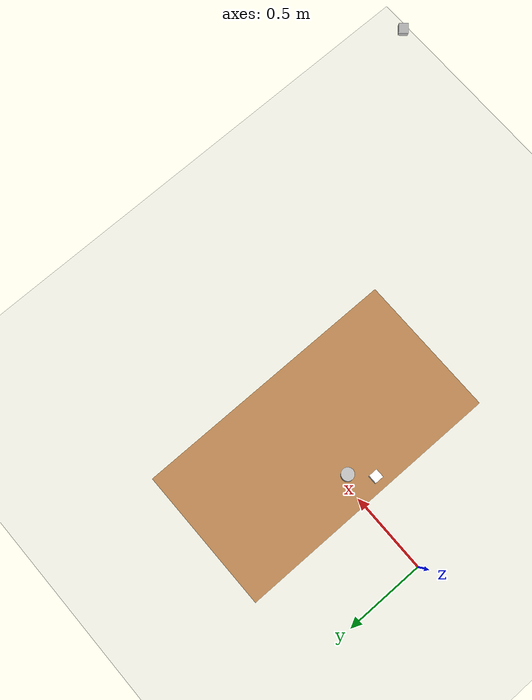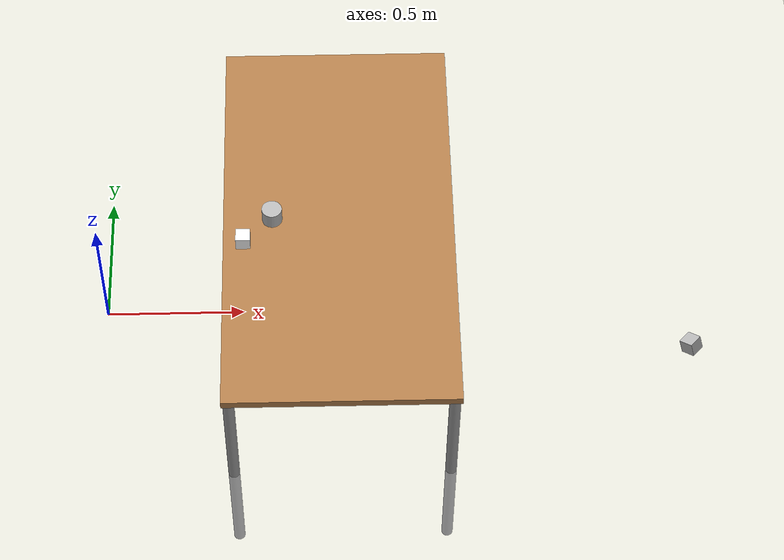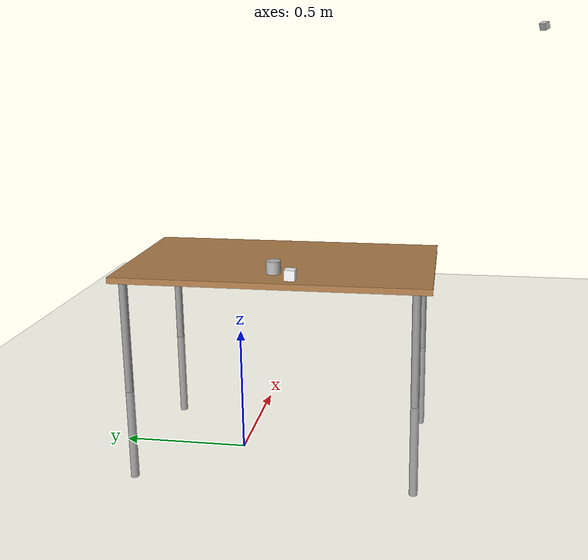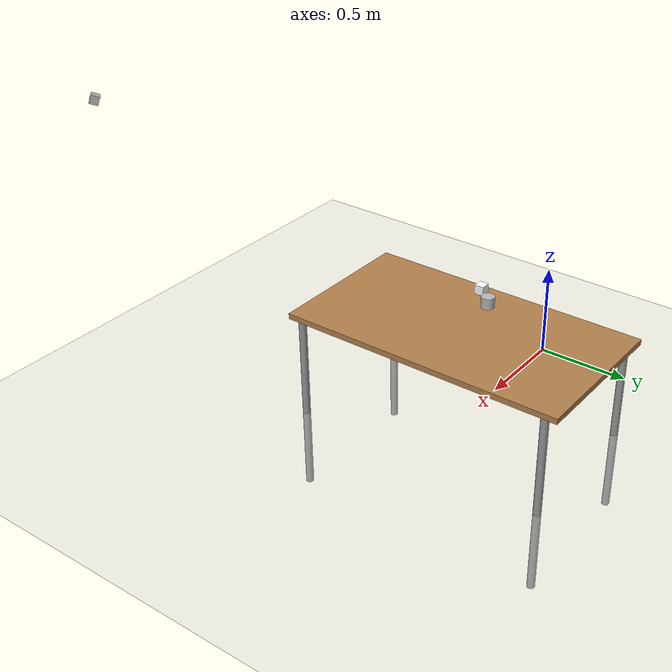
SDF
<sdf version="1.6">
 <world name="grab_world">
  <include><uri>model://ground_plane</uri></include>
  <include><uri>model://sun</uri></include>
  <include><name>table</name><uri>model://table</uri><pose>0.85 0 -0.45 0 0 1.5708</pose></include>
  <include><name>wood_cube</name><uri>model://wood_cube_5cm</uri><pose>0.52 -0.10 0.565 0 0 0</pose></include>
  <include><name>beer</name><uri>model://beer</uri><pose>0.62 0.0 0.565 0 0 0</pose></include>
  <model name="scene_camera">
   <static>true</static>
   <pose>1.8 -1.3 1.7 0 0.35 2.4</pose>
   <link name="link">
    <visual name="vis"><geometry><box><size>0.04 0.04 0.04</size></box></geometry></visual>
    <sensor type="camera" name="scene_cam">
     <always_on>true</always_on>
     <update_rate>15</update_rate>
     <camera name="scene">
      <horizontal_fov>1.2</horizontal_fov>
      <image><width>960</width><height>540</height><format>R8G8B8</format></image>
      <clip><near>0.05</near><far>50</far></clip>
     </camera>
     <plugin name="scene_cam_controller" filename="libgazebo_ros_camera.so">
      <ros>
       <namespace>/sim_scene/arm</namespace>
       <remapping>scene/image_raw:=image_raw</remapping>
       <remapping>scene/camera_info:=camera_info</remapping>
      </ros>
      <camera_name>scene</camera_name>
      <frame_name>scene_camera</frame_name>
     </plugin>
    </sensor>
   </link>
  </model>
  <physics name="default_physics" default="0" type="ode">
   <max_step_size>0.001</max_step_size>
   <real_time_factor>1.0</real_time_factor>
   <real_time_update_rate>1000</real_time_update_rate>
  </physics>
 </world>
</sdf>

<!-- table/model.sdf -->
<sdf version="1.5">
  <model name="table">
    <static>true</static>
    <link name="link">
      <collision name="surface">
        <pose>0 0 1.0 0 0 0</pose>
        <geometry>
          <box>
            <size>1.5 0.8 0.03</size>
          </box>
        </geometry>
        <surface>
          <friction>
            <ode>
              <mu>0.6</mu>
              <mu2>0.6</mu2>
            </ode>
          </friction>
        </surface>
      </collision>
      <visual name="visual1">
        <pose>0 0 1.0 0 0 0</pose>
        <geometry>
          <box>
            <size>1.5 0.8 0.03</size>
          </box>
        </geometry>
        <material>
          <script>
            <uri>model://media/materials/scripts/gazebo.material</uri>
            <name>Gazebo/Wood</name>
          </script>
        </material>
      </visual>
      <collision name="front_left_leg">
        <pose>0.68 0.38 0.5 0 0 0</pose>
        <geometry>
          <cylinder>
            <radius>0.02</radius>
            <length>1.0</length>
          </cylinder>
        </geometry>
      </collision>
      <visual name="front_left_leg">
        <pose>0.68 0.38 0.5 0 0 0</pose>
        <geometry>
          <cylinder>
            <radius>0.02</radius>
            <length>1.0</length>
          </cylinder>
        </geometry>
        <material>
          <script>
            <uri>model://media/materials/scripts/gazebo.material</uri>
            <name>Gazebo/Grey</name>
          </script>
        </material>
      </visual>
      <collision name="front_right_leg">
        <pose>0.68 -0.38 0.5 0 0 0</pose>
        <geometry>
          <cylinder>
            <radius>0.02</radius>
            <length>1.0</length>
          </cylinder>
        </geometry>
      </collision>
      <visual name="front_right_leg">
        <pose>0.68 -0.38 0.5 0 0 0</pose>
        <geometry>
          <cylinder>
            <radius>0.02</radius>
            <length>1.0</length>
          </cylinder>
        </geometry>
        <material>
          <script>
            <uri>model://media/materials/scripts/gazebo.material</uri>
            <name>Gazebo/Grey</name>
          </script>
        </material>
      </visual>
      <collision name="back_right_leg">
        <pose>-0.68 -0.38 0.5 0 0 0</pose>
        <geometry>
          <cylinder>
            <radius>0.02</radius>
            <length>1.0</length>
          </cylinder>
        </geometry>
      </collision>
      <visual name="back_right_leg">
        <pose>-0.68 -0.38 0.5 0 0 0</pose>
        <geometry>
          <cylinder>
            <radius>0.02</radius>
            <length>1.0</length>
          </cylinder>
        </geometry>
        <material>
          <script>
            <uri>model://media/materials/scripts/gazebo.material</uri>
            <name>Gazebo/Grey</name>
          </script>
        </material>
      </visual>
      <collision name="back_left_leg">
        <pose>-0.68 0.38 0.5 0 0 0</pose>
        <geometry>
          <cylinder>
            <radius>0.02</radius>
            <length>1.0</length>
          </cylinder>
        </geometry>
      </collision>
      <visual name="back_left_leg">
        <pose>-0.68 0.38 0.5 0 0 0</pose>
        <geometry>
          <cylinder>
            <radius>0.02</radius>
            <length>1.0</length>
          </cylinder>
        </geometry>
        <material>
          <script>
            <uri>model://media/materials/scripts/gazebo.material</uri>
            <name>Gazebo/Grey</name>
          </script>
        </material>
      </visual>
    </link>
  </model>
</sdf>

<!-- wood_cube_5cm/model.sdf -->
<sdf version="1.5">
  <model name="wood_cube_5cm">
    <link name="link">
      <pose>0 0 0.025 0 0 0</pose>
      <inertial>
        <mass>0.0565</mass>
        <inertia>
          <ixx>2.3541666666666672e-05</ixx>
          <ixy>0</ixy>
          <ixz>0</ixz>
          <iyy>2.3541666666666672e-05</iyy>
          <iyz>0</iyz>
          <izz>2.3541666666666672e-05</izz>
        </inertia>
      </inertial>

      <collision name="collision">
        <geometry>
          <box>
            <size>0.05 0.05 0.05</size>
          </box>
        </geometry>
        <surface>
          <contact>
            <!-- Red Pine coefficients for longitudinal axis of the wood
                 according to:
                 http://www.fpl.fs.fed.us/documnts/fplgtr/fplgtr113/ch04.pdf -->
            <poissons_ratio>0.347</poissons_ratio>
            <elastic_modulus>8.8e+09</elastic_modulus>
            <ode>
              <kp>100000</kp>
              <kd>1</kd>
              <max_vel>1.0</max_vel>
              <min_depth>0.001</min_depth>
            </ode>
          </contact>
          <friction>
            <torsional>
              <coefficient>1.0</coefficient>
              <use_patch_radius>0</use_patch_radius>
              <surface_radius>0.05</surface_radius>
            </torsional>
          </friction>
        </surface>
      </collision>

      <visual name="visual">
        <geometry>
          <box>
            <size>0.05 0.05 0.05</size>
          </box>
        </geometry>
        <material><diffuse>1 1 1 1</diffuse><specular>0.1 0.1 0.1 1</specular></material>
      </visual>

    </link>
  </model>
</sdf>

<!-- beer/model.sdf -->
<sdf version='1.4'>
  <model name="beer">
    <link name='link'>
      <pose>0 0 0 0 0 0</pose>
      <inertial>
        <mass>0.390</mass>
        <inertia>
          <ixx>0.00058</ixx>
          <ixy>0</ixy>
          <ixz>0</ixz>
          <iyy>0.00058</iyy>
          <iyz>0</iyz>
          <izz>0.00025</izz>
        </inertia>
      </inertial>
      <collision name='collision'>
        <geometry>
          <cylinder>
            <radius>0.03500</radius>
            <length>0.12000</length>
          </cylinder>
        </geometry>
      </collision>

      <visual name='visual'>
        <geometry>
          <cylinder>
            <radius>0.03500</radius>
            <length>0.12000</length>
          </cylinder>
        </geometry>

        <material>
          <script>
            <uri>model://beer/materials/scripts</uri>
            <uri>model://beer/materials/textures</uri>
            <name>Beer/Diffuse</name>
          </script>
        </material>
      </visual>
    </link>
  </model>
</sdf>
